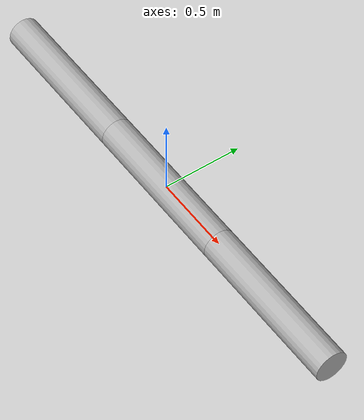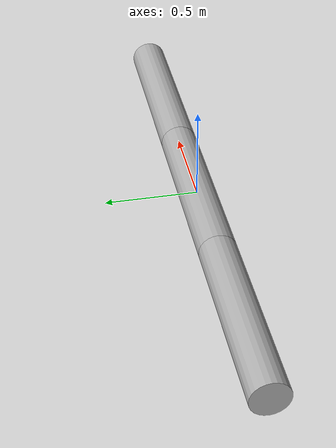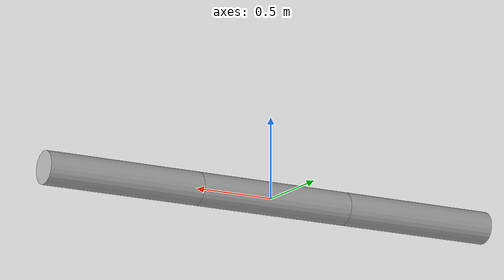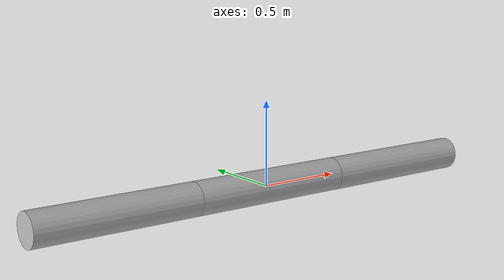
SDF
<?xml version="1.0"?>
<sdf version='1.11'>
  <model name='swimmer'>
    <link name='link1_1'>
      <inertial>
        <pose>0 0 0 0 0 0</pose>
        <mass>1.9999999999999999e-06</mass>
        <inertia>
          <ixx>2.0000000000000001e-09</ixx>
          <ixy>0</ixy>
          <ixz>0</ixz>
          <iyy>2.0000000000000001e-09</iyy>
          <iyz>0</iyz>
          <izz>2.0000000000000001e-09</izz>
        </inertia>
      </inertial>
    </link>
    <joint name='slider1' type='prismatic'>
      <pose relative_to='link1_1'>0 0 0 0 0 0</pose>
      <parent>link1_1</parent>
      <child>link1_2</child>
      <axis>
        <xyz>1 0 0</xyz>
        <limit>
          <lower>0</lower>
          <upper>1</upper>
          <effort>0</effort>
          <velocity>0</velocity>
        </limit>
        <dynamics>
          <damping>1</damping>
          <friction>0.0001</friction>
          <spring_reference>0</spring_reference>
          <spring_stiffness>0</spring_stiffness>
        </dynamics>
      </axis>
    </joint>
    <link name='link1_2'>
      <pose relative_to='slider1'>0 0 0 0 0 0</pose>
      <inertial>
        <pose>0 0 0 0 0 0</pose>
        <mass>9.9999999999999995e-07</mass>
        <inertia>
          <ixx>1.0000000000000001e-09</ixx>
          <ixy>0</ixy>
          <ixz>0</ixz>
          <iyy>1.0000000000000001e-09</iyy>
          <iyz>0</iyz>
          <izz>1.0000000000000001e-09</izz>
        </inertia>
      </inertial>
    </link>
    <joint name='slider2' type='prismatic'>
      <pose relative_to='link1_2'>0 0 0 0 0 0</pose>
      <parent>link1_2</parent>
      <child>link1_3</child>
      <axis>
        <xyz>0 1 0</xyz>
        <limit>
          <lower>0</lower>
          <upper>1</upper>
          <effort>0</effort>
          <velocity>0</velocity>
        </limit>
        <dynamics>
          <damping>1</damping>
          <friction>0.0001</friction>
          <spring_reference>0</spring_reference>
          <spring_stiffness>0</spring_stiffness>
        </dynamics>
      </axis>
    </joint>
    <link name='link1_3'>
      <pose relative_to='slider2'>0 0 0 0 0 0</pose>
      <inertial>
        <pose>0 0 0 0 0 0</pose>
        <mass>9.9999999999999995e-07</mass>
        <inertia>
          <ixx>1.0000000000000001e-09</ixx>
          <ixy>0</ixy>
          <ixz>0</ixz>
          <iyy>1.0000000000000001e-09</iyy>
          <iyz>0</iyz>
          <izz>1.0000000000000001e-09</izz>
        </inertia>
      </inertial>
    </link>
    <joint name='free_body_rot' type='revolute'>
      <pose relative_to='link1_3'>0 0 0 0 0 0</pose>
      <parent>link1_3</parent>
      <child>link1_4</child>
      <axis>
        <xyz>0 0 1</xyz>
        <limit>
          <lower>-inf</lower>
          <upper>inf</upper>
        </limit>
        <dynamics>
          <damping>1</damping>
          <friction>0.0001</friction>
          <spring_reference>0</spring_reference>
          <spring_stiffness>0</spring_stiffness>
        </dynamics>
      </axis>
    </joint>
    <link name='link1_4'>
      <pose relative_to='free_body_rot'>0 0 0 0 0 0</pose>
      <inertial>
        <pose>0.99999997191383694 0 0 0 0 0</pose>
        <mass>35.604720999999998</mass>
        <inertia>
          <ixx>0.23736000099999999</ixx>
          <ixy>0</ixy>
          <ixz>0</ixz>
          <iyy>4.3912510009999721</iyy>
          <iyz>0</iyz>
          <izz>4.3912510009999721</izz>
        </inertia>
      </inertial>
      <collision name='link1_4_fixed_joint_lump__torso_collision'>
        <pose>1 0 0 0 -1.5707963267948966 0</pose>
        <geometry>
          <cylinder>
            <length>1</length>
            <radius>0.10000000000000001</radius>
          </cylinder>
        </geometry>
      </collision>
      <visual name='link1_4_fixed_joint_lump__torso_visual'>
        <pose>1 0 0 0 -1.5707963267948966 0</pose>
        <geometry>
          <cylinder>
            <length>1</length>
            <radius>0.10000000000000001</radius>
          </cylinder>
        </geometry>
              <material>
          <ambient>0.5 0.5 0.5 1</ambient>
          <diffuse>0.7 0.7 0.7 1</diffuse>
          <specular>0.1 0.1 0.1 1</specular>
        </material>
      </visual>
    </link>
    <joint name='motor1_rot' type='revolute'>
      <pose relative_to='link1_4'>0.5 0 0 0 0 0</pose>
      <parent>link1_4</parent>
      <child>link1_6</child>
      <axis>
        <xyz>0 0 1</xyz>
        <limit>
          <lower>-1.74533</lower>
          <upper>1.74533</upper>
          <effort>0</effort>
          <velocity>0</velocity>
        </limit>
        <dynamics>
          <damping>1</damping>
          <friction>0.0001</friction>
          <spring_reference>0</spring_reference>
          <spring_stiffness>0</spring_stiffness>
        </dynamics>
      </axis>
    </joint>
    <link name='link1_6'>
      <pose relative_to='motor1_rot'>0 0 0 0 0 0</pose>
      <inertial>
        <pose>-0.49999998595691852 0 0 0 0 0</pose>
        <mass>35.604720999999998</mass>
        <inertia>
          <ixx>0.23736000099999999</ixx>
          <ixy>0</ixy>
          <ixz>0</ixz>
          <iyy>4.3912502509999944</iyy>
          <iyz>0</iyz>
          <izz>4.3912502509999944</izz>
        </inertia>
      </inertial>
      <collision name='link1_6_fixed_joint_lump__mid_collision'>
        <pose>-0.5 0 0 0 -1.5707963267948966 0</pose>
        <geometry>
          <cylinder>
            <length>1</length>
            <radius>0.10000000000000001</radius>
          </cylinder>
        </geometry>
      </collision>
      <visual name='link1_6_fixed_joint_lump__mid_visual'>
        <pose>-0.5 0 0 0 -1.5707963267948966 0</pose>
        <geometry>
          <cylinder>
            <length>1</length>
            <radius>0.10000000000000001</radius>
          </cylinder>
        </geometry>
              <material>
          <ambient>0.5 0.5 0.5 1</ambient>
          <diffuse>0.7 0.7 0.7 1</diffuse>
          <specular>0.1 0.1 0.1 1</specular>
        </material>
      </visual>
    </link>
    <joint name='motor2_rot' type='revolute'>
      <pose relative_to='link1_6'>-1 0 0 0 0 0</pose>
      <parent>link1_6</parent>
      <child>link1_8</child>
      <axis>
        <xyz>0 0 1</xyz>
        <limit>
          <lower>-1.74533</lower>
          <upper>1.74533</upper>
          <effort>0</effort>
          <velocity>0</velocity>
        </limit>
        <dynamics>
          <damping>1</damping>
          <friction>0.0001</friction>
          <spring_reference>0</spring_reference>
          <spring_stiffness>0</spring_stiffness>
        </dynamics>
      </axis>
    </joint>
    <link name='link1_8'>
      <pose relative_to='motor2_rot'>0 0 0 0 0 0</pose>
      <inertial>
        <pose>-0.49999998595691852 0 0 0 0 0</pose>
        <mass>35.604720999999998</mass>
        <inertia>
          <ixx>0.23736000099999999</ixx>
          <ixy>0</ixy>
          <ixz>0</ixz>
          <iyy>4.3912502509999944</iyy>
          <iyz>0</iyz>
          <izz>4.3912502509999944</izz>
        </inertia>
      </inertial>
      <collision name='link1_8_fixed_joint_lump__back_collision'>
        <pose>-0.5 0 0 0 -1.5707963267948966 0</pose>
        <geometry>
          <cylinder>
            <length>1</length>
            <radius>0.10000000000000001</radius>
          </cylinder>
        </geometry>
      </collision>
      <visual name='link1_8_fixed_joint_lump__back_visual'>
        <pose>-0.5 0 0 0 -1.5707963267948966 0</pose>
        <geometry>
          <cylinder>
            <length>1</length>
            <radius>0.10000000000000001</radius>
          </cylinder>
        </geometry>
              <material>
          <ambient>0.5 0.5 0.5 1</ambient>
          <diffuse>0.7 0.7 0.7 1</diffuse>
          <specular>0.1 0.1 0.1 1</specular>
        </material>
      </visual>
    </link>

</model>
</sdf>
